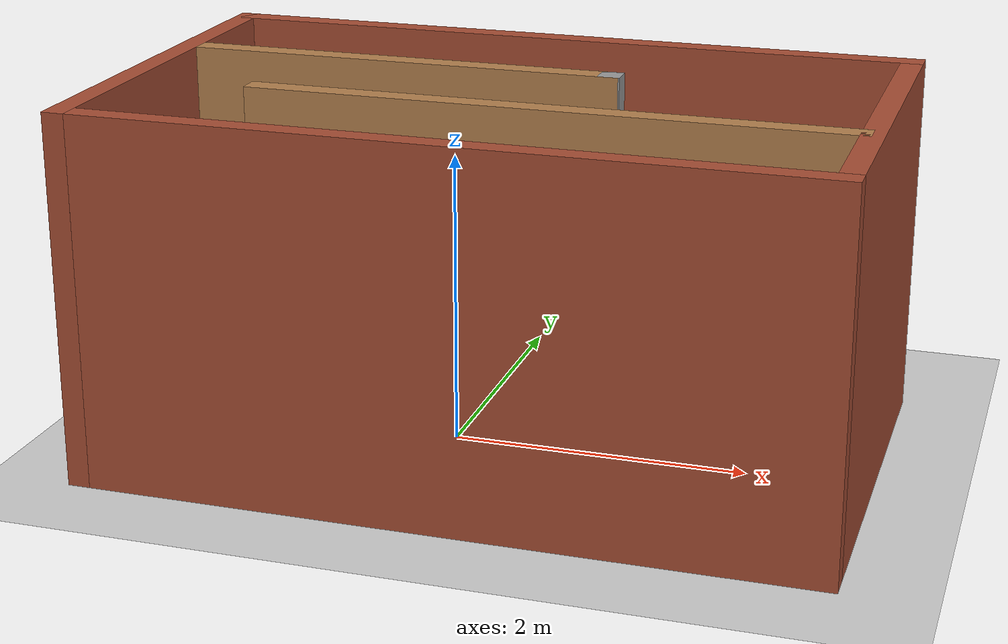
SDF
<sdf version="1.7">
 <world name="default">
  <light name="sun" type="directional">
   <pose>0 0 10 0 -0 0</pose>
   <diffuse>0.8 0.8 0.8 1</diffuse>
   <specular>0.2 0.2 0.2 1</specular>
   <attenuation>
    <range>1000</range>
    <constant>0.9</constant>
    <linear>0.01</linear>
    <quadratic>0.001</quadratic>
   </attenuation>
   <direction>-0.5 0.1 -0.9</direction>
   <spot><inner_angle>0</inner_angle><outer_angle>0</outer_angle><falloff>0</falloff></spot>
  </light>
  <model name="ground_plane">
   <static>1</static>
   <link name="link">
    <collision name="collision">
     <geometry><plane><normal>0 0 1</normal><size>100 100</size></plane></geometry>
     <surface><friction><ode><mu>100</mu><mu2>50</mu2></ode></friction></surface>
    </collision>
    <visual name="visual">
     <cast_shadows>0</cast_shadows>
     <geometry><plane><normal>0 0 1</normal><size>100 100</size></plane></geometry>
     <material>
      <script><uri>file://media/materials/scripts/gazebo.material</uri><name>Gazebo/Grey</name></script>
     </material>
    </visual>
   </link>
  </model>
  <gravity>0 0 -9.8</gravity>
  <magnetic_field>6e-06 2.3e-05 -4.2e-05</magnetic_field>
  <atmosphere type="adiabatic"/>
  <physics type="ode">
   <max_step_size>0.001</max_step_size>
   <real_time_factor>1</real_time_factor>
   <real_time_update_rate>1000</real_time_update_rate>
  </physics>
  <scene><ambient>0.4 0.4 0.4 1</ambient><background>0.7 0.7 0.7 1</background><shadows>1</shadows></scene>
  <audio><device>default</device></audio>
  <spherical_coordinates>
   <surface_model>EARTH_WGS84</surface_model>
   <latitude_deg>0</latitude_deg>
   <longitude_deg>0</longitude_deg>
   <elevation>0</elevation>
   <heading_deg>0</heading_deg>
  </spherical_coordinates>
  <model name="robot_ka_house">
   <pose>0.334961 0.960136 0 0 -0 0</pose>
   <link name="Wall_0">
    <collision name="Wall_0_Collision">
     <geometry><box><size>5 0.15 2.5</size></box></geometry>
     <pose>0 0 1.25 0 -0 0</pose>
    </collision>
    <visual name="Wall_0_Visual">
     <pose>0 0 1.25 0 -0 0</pose>
     <geometry><box><size>5 0.15 2.5</size></box></geometry>
     <material>
      <script><uri>file://media/materials/scripts/gazebo.material</uri><name>Gazebo/Bricks</name></script>
      <ambient>1 1 1 1</ambient>
     </material>
     <meta><layer>0</layer></meta>
    </visual>
    <pose>-0 0.4825 0 0 -0 0</pose>
   </link>
   <link name="Wall_1">
    <collision name="Wall_1_Collision">
     <geometry><box><size>3 0.15 2.5</size></box></geometry>
     <pose>0 0 1.25 0 -0 0</pose>
    </collision>
    <visual name="Wall_1_Visual">
     <pose>0 0 1.25 0 -0 0</pose>
     <geometry><box><size>3 0.15 2.5</size></box></geometry>
     <material>
      <script><uri>file://media/materials/scripts/gazebo.material</uri><name>Gazebo/Bricks</name></script>
      <ambient>1 1 1 1</ambient>
     </material>
     <meta><layer>0</layer></meta>
    </visual>
    <pose>2.425 -0.9425 0 0 -0 -1.5708</pose>
   </link>
   <link name="Wall_12">
    <collision name="Wall_12_Collision">
     <geometry><box><size>0.15 0.15 2.5</size></box></geometry>
     <pose>0 0 1.25 0 -0 0</pose>
    </collision>
    <visual name="Wall_12_Visual">
     <pose>0 0 1.25 0 -0 0</pose>
     <geometry><box><size>0.15 0.15 2.5</size></box></geometry>
     <material>
      <script><uri>file://media/materials/scripts/gazebo.material</uri><name>Gazebo/Grey</name></script>
      <ambient>1 1 1 1</ambient>
     </material>
     <meta><layer>0</layer></meta>
    </visual>
    <pose>0.585 -0.4875 0 0 -0 0</pose>
   </link>
   <link name="Wall_15">
    <collision name="Wall_15_Collision">
     <geometry><box><size>3 0.15 2.5</size></box></geometry>
     <pose>0 0 1.25 0 -0 0</pose>
    </collision>
    <visual name="Wall_15_Visual">
     <pose>0 0 1.25 0 -0 0</pose>
     <geometry><box><size>3 0.15 2.5</size></box></geometry>
     <material>
      <script><uri>file://media/materials/scripts/gazebo.material</uri><name>Gazebo/Wood</name></script>
      <ambient>1 1 1 1</ambient>
     </material>
     <meta><layer>0</layer></meta>
    </visual>
    <pose>-0.85 -0.4875 0 0 -0 3.14159</pose>
   </link>
   <link name="Wall_19">
    <collision name="Wall_19_Collision">
     <geometry><box><size>4 0.15 2.5</size></box></geometry>
     <pose>0 0 1.25 0 -0 0</pose>
    </collision>
    <visual name="Wall_19_Visual">
     <pose>0 0 1.25 0 -0 0</pose>
     <geometry><box><size>4 0.15 2.5</size></box></geometry>
     <material>
      <script><uri>file://media/materials/scripts/gazebo.material</uri><name>Gazebo/Wood</name></script>
      <ambient>1 1 1 1</ambient>
     </material>
     <meta><layer>0</layer></meta>
    </visual>
    <pose>0.42 -1.4175 0 0 -0 3.14159</pose>
   </link>
   <link name="Wall_2">
    <collision name="Wall_2_Collision">
     <geometry><box><size>5 0.15 2.5</size></box></geometry>
     <pose>0 0 1.25 0 -0 0</pose>
    </collision>
    <visual name="Wall_2_Visual">
     <pose>0 0 1.25 0 -0 0</pose>
     <geometry><box><size>5 0.15 2.5</size></box></geometry>
     <material>
      <script><uri>file://media/materials/scripts/gazebo.material</uri><name>Gazebo/Bricks</name></script>
      <ambient>1 1 1 1</ambient>
     </material>
     <meta><layer>0</layer></meta>
    </visual>
    <pose>-0 -2.3675 0 0 -0 3.14159</pose>
   </link>
   <link name="Wall_3">
    <collision name="Wall_3_Collision">
     <geometry><box><size>3 0.15 2.5</size></box></geometry>
     <pose>0 0 1.25 0 -0 0</pose>
    </collision>
    <visual name="Wall_3_Visual">
     <pose>0 0 1.25 0 -0 0</pose>
     <geometry><box><size>3 0.15 2.5</size></box></geometry>
     <material>
      <script><uri>file://media/materials/scripts/gazebo.material</uri><name>Gazebo/Bricks</name></script>
      <ambient>1 1 1 1</ambient>
     </material>
     <meta><layer>0</layer></meta>
    </visual>
    <pose>-2.425 -0.9425 0 0 -0 1.5708</pose>
   </link>
   <static>1</static>
  </model>
 </world>
</sdf>
